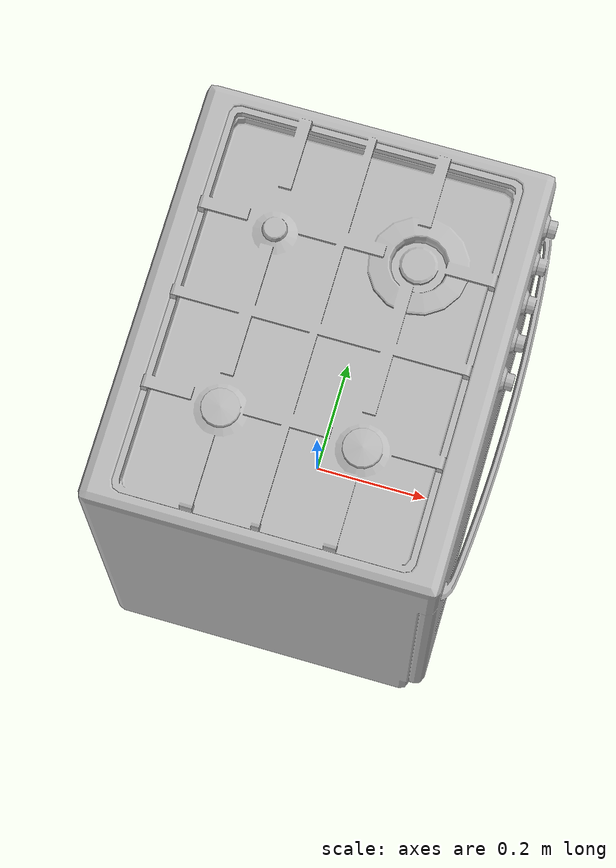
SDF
<?xml version='1.0'?>
<sdf version='1.4'>
  <model name='264'>
    <pose>0 0 0 0 0 0</pose>
    <static>true</static>
    <link name='link'>
      <collision name='collision'>
        <pose>0 0 0 0 0 0</pose>
        <geometry>
          <box>
            <size>0.589299 0.69 2</size>
          </box>
        </geometry>
      </collision>
      <visual name='visual'>
        <pose>0 0 0 0 0 0</pose>
        <geometry>
          <mesh><uri>model://264/264.dae</uri></mesh>
        </geometry>
      </visual>
    </link>
  </model>
</sdf>
